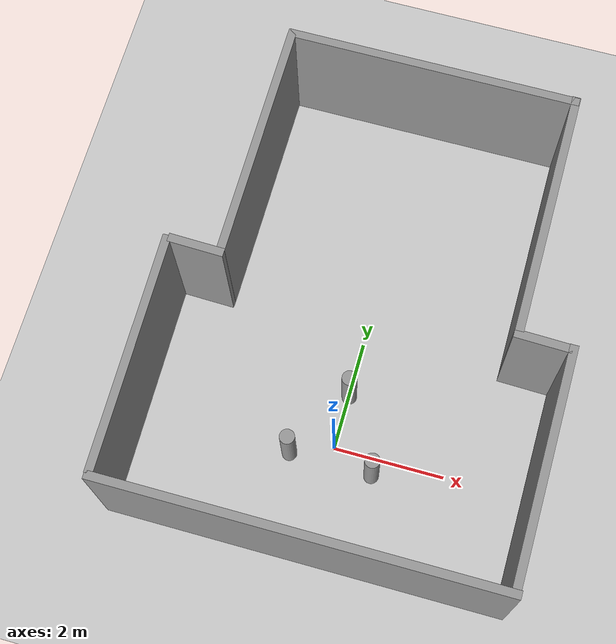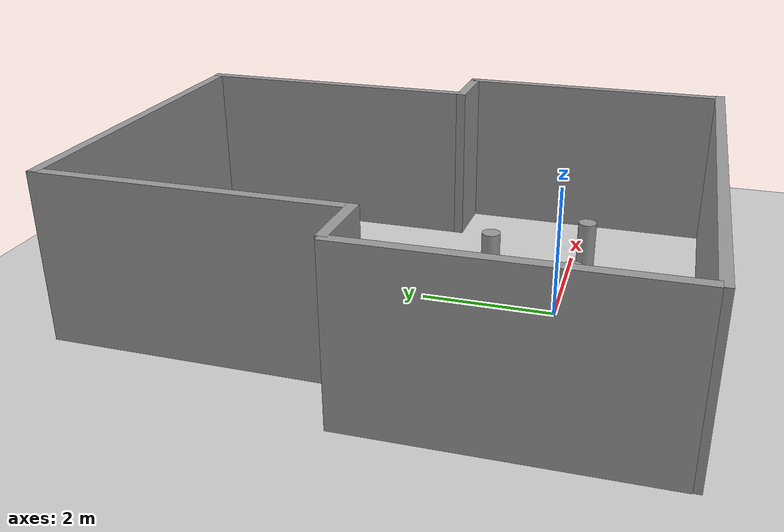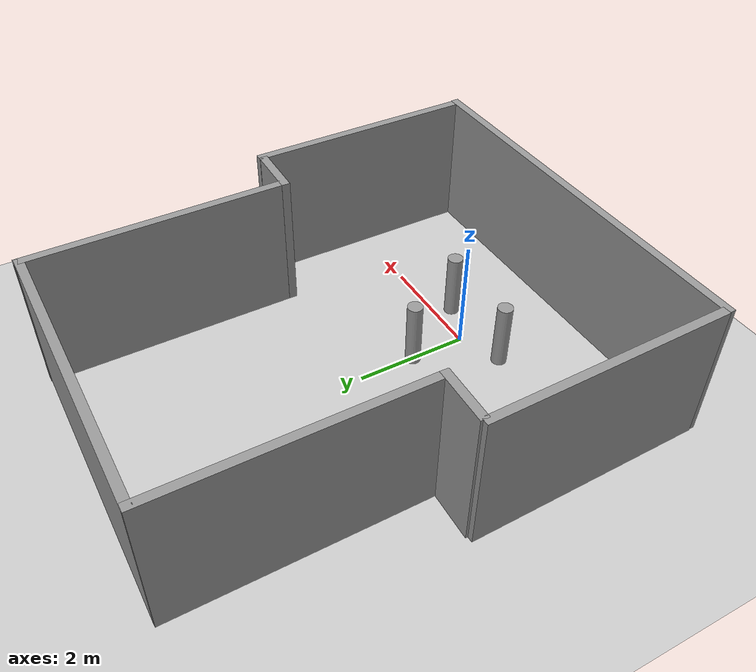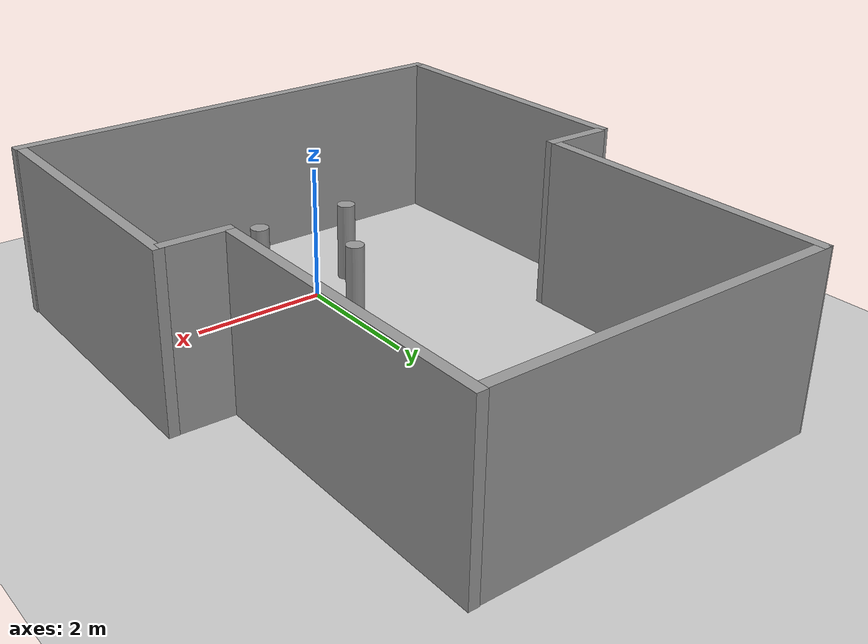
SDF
<sdf version="1.7">
 <world name="default">
  <light name="sun" type="directional">
   <pose>0 0 10 0 -0 0</pose>
   <diffuse>0.8 0.8 0.8 1</diffuse>
   <specular>0.2 0.2 0.2 1</specular>
   <attenuation>
    <range>1000</range>
    <constant>0.9</constant>
    <linear>0.01</linear>
    <quadratic>0.001</quadratic>
   </attenuation>
   <direction>-0.5 0.1 -0.9</direction>
   <spot><inner_angle>0</inner_angle><outer_angle>0</outer_angle><falloff>0</falloff></spot>
  </light>
  <model name="ground_plane">
   <static>1</static>
   <link name="link">
    <collision name="collision">
     <geometry><plane><normal>0 0 1</normal><size>100 100</size></plane></geometry>
     <surface>
      <contact><collide_bitmask>65535</collide_bitmask></contact>
      <friction><ode><mu>100</mu><mu2>50</mu2></ode></friction>
     </surface>
    </collision>
    <visual name="visual">
     <cast_shadows>0</cast_shadows>
     <geometry><plane><normal>0 0 1</normal><size>100 100</size></plane></geometry>
     <material>
      <script><uri>file://media/materials/scripts/gazebo.material</uri><name>Gazebo/Grey</name></script>
     </material>
    </visual>
   </link>
  </model>
  <gravity>0 0 -9.8</gravity>
  <magnetic_field>6e-06 2.3e-05 -4.2e-05</magnetic_field>
  <atmosphere type="adiabatic"/>
  <physics type="ode">
   <max_step_size>0.001</max_step_size>
   <real_time_factor>1</real_time_factor>
   <real_time_update_rate>1000</real_time_update_rate>
  </physics>
  <scene><ambient>0.4 0.4 0.4 1</ambient><background>0.7 0.7 0.7 1</background><shadows>1</shadows></scene>
  <spherical_coordinates>
   <surface_model>EARTH_WGS84</surface_model>
   <latitude_deg>0</latitude_deg>
   <longitude_deg>0</longitude_deg>
   <elevation>0</elevation>
   <heading_deg>0</heading_deg>
  </spherical_coordinates>
  <model name="triangle_lattice">
   <model name="smaller_cylinder">
    <model name="smaller_cylinder_1">
     <link name="link">
      <inertial>
       <mass>0.0872829</mass>
       <inertia>
        <ixx>0.0108064</ixx>
        <ixy>0</ixy>
        <ixz>0</ixz>
        <iyy>0.0108064</iyy>
        <iyz>0</iyz>
        <izz>0.000796093</izz>
       </inertia>
      </inertial>
      <visual name="visual">
       <geometry><cylinder><radius>0.135062</radius><length>1.19624</length></cylinder></geometry>
       <material>
        <script><name>Gazebo/Grey</name><uri>file://media/materials/scripts/gazebo.material</uri></script>
        <shader type="pixel"/>
       </material>
      </visual>
      <collision name="collision">
       <geometry><cylinder><radius>0.135062</radius><length>1.19624</length></cylinder></geometry>
       <surface>
        <friction>
         <ode><mu>1</mu><mu2>1</mu2><fdir1>0 0 0</fdir1><slip1>0</slip1><slip2>0</slip2></ode>
         <torsional>
          <coefficient>1</coefficient>
          <patch_radius>0</patch_radius>
          <surface_radius>0</surface_radius>
          <use_patch_radius>1</use_patch_radius>
          <ode><slip>0</slip></ode>
         </torsional>
        </friction>
        <bounce><restitution_coefficient>0</restitution_coefficient><threshold>1e+06</threshold></bounce>
        <contact>
         <collide_without_contact>0</collide_without_contact>
         <collide_without_contact_bitmask>1</collide_without_contact_bitmask>
         <collide_bitmask>1</collide_bitmask>
         <ode>
          <soft_cfm>0</soft_cfm>
          <soft_erp>0.2</soft_erp>
          <kp>1e+13</kp>
          <kd>1</kd>
          <max_vel>0.01</max_vel>
          <min_depth>0</min_depth>
         </ode>
         <bullet>
          <split_impulse>1</split_impulse>
          <split_impulse_penetration_threshold>-0.01</split_impulse_penetration_threshold>
          <soft_cfm>0</soft_cfm>
          <soft_erp>0.2</soft_erp>
          <kp>1e+13</kp>
          <kd>1</kd>
         </bullet>
        </contact>
       </surface>
      </collision>
     </link>
     <static>0</static>
     <pose>0.044198 -0.101528 0 0 -0 0</pose>
    </model>
    <static>1</static>
    <allow_auto_disable>0</allow_auto_disable>
    <pose>-3.76148 0.681051 0 0 -0 0</pose>
   </model>
   <model name="smaller_cylinder_0">
    <model name="smaller_cylinder_1">
     <link name="link">
      <inertial>
       <mass>0.0872829</mass>
       <inertia>
        <ixx>0.0108064</ixx>
        <ixy>0</ixy>
        <ixz>0</ixz>
        <iyy>0.0108064</iyy>
        <iyz>0</iyz>
        <izz>0.000796093</izz>
       </inertia>
      </inertial>
      <visual name="visual">
       <geometry><cylinder><radius>0.135062</radius><length>1.19624</length></cylinder></geometry>
       <material>
        <script><name>Gazebo/Grey</name><uri>file://media/materials/scripts/gazebo.material</uri></script>
        <shader type="pixel"/>
       </material>
      </visual>
      <collision name="collision">
       <geometry><cylinder><radius>0.135062</radius><length>1.19624</length></cylinder></geometry>
       <surface>
        <friction>
         <ode><mu>1</mu><mu2>1</mu2><fdir1>0 0 0</fdir1><slip1>0</slip1><slip2>0</slip2></ode>
         <torsional>
          <coefficient>1</coefficient>
          <patch_radius>0</patch_radius>
          <surface_radius>0</surface_radius>
          <use_patch_radius>1</use_patch_radius>
          <ode><slip>0</slip></ode>
         </torsional>
        </friction>
        <bounce><restitution_coefficient>0</restitution_coefficient><threshold>1e+06</threshold></bounce>
        <contact>
         <collide_without_contact>0</collide_without_contact>
         <collide_without_contact_bitmask>1</collide_without_contact_bitmask>
         <collide_bitmask>1</collide_bitmask>
         <ode>
          <soft_cfm>0</soft_cfm>
          <soft_erp>0.2</soft_erp>
          <kp>1e+13</kp>
          <kd>1</kd>
          <max_vel>0.01</max_vel>
          <min_depth>0</min_depth>
         </ode>
         <bullet>
          <split_impulse>1</split_impulse>
          <split_impulse_penetration_threshold>-0.01</split_impulse_penetration_threshold>
          <soft_cfm>0</soft_cfm>
          <soft_erp>0.2</soft_erp>
          <kp>1e+13</kp>
          <kd>1</kd>
         </bullet>
        </contact>
       </surface>
      </collision>
     </link>
     <static>0</static>
     <pose>0.044198 -0.101528 0 0 -0 0</pose>
    </model>
    <static>1</static>
    <allow_auto_disable>0</allow_auto_disable>
    <pose>-2.72489 1.77147 0 0 -0 0</pose>
   </model>
   <model name="smaller_cylinder_1">
    <model name="smaller_cylinder_1">
     <link name="link">
      <inertial>
       <mass>0.0872829</mass>
       <inertia>
        <ixx>0.0108064</ixx>
        <ixy>0</ixy>
        <ixz>0</ixz>
        <iyy>0.0108064</iyy>
        <iyz>0</iyz>
        <izz>0.000796093</izz>
       </inertia>
      </inertial>
      <visual name="visual">
       <geometry><cylinder><radius>0.135062</radius><length>1.19624</length></cylinder></geometry>
       <material>
        <script><name>Gazebo/Grey</name><uri>file://media/materials/scripts/gazebo.material</uri></script>
        <shader type="pixel"/>
       </material>
      </visual>
      <collision name="collision">
       <geometry><cylinder><radius>0.135062</radius><length>1.19624</length></cylinder></geometry>
       <surface>
        <friction>
         <ode><mu>1</mu><mu2>1</mu2><fdir1>0 0 0</fdir1><slip1>0</slip1><slip2>0</slip2></ode>
         <torsional>
          <coefficient>1</coefficient>
          <patch_radius>0</patch_radius>
          <surface_radius>0</surface_radius>
          <use_patch_radius>1</use_patch_radius>
          <ode><slip>0</slip></ode>
         </torsional>
        </friction>
        <bounce><restitution_coefficient>0</restitution_coefficient><threshold>1e+06</threshold></bounce>
        <contact>
         <collide_without_contact>0</collide_without_contact>
         <collide_without_contact_bitmask>1</collide_without_contact_bitmask>
         <collide_bitmask>1</collide_bitmask>
         <ode>
          <soft_cfm>0</soft_cfm>
          <soft_erp>0.2</soft_erp>
          <kp>1e+13</kp>
          <kd>1</kd>
          <max_vel>0.01</max_vel>
          <min_depth>0</min_depth>
         </ode>
         <bullet>
          <split_impulse>1</split_impulse>
          <split_impulse_penetration_threshold>-0.01</split_impulse_penetration_threshold>
          <soft_cfm>0</soft_cfm>
          <soft_erp>0.2</soft_erp>
          <kp>1e+13</kp>
          <kd>1</kd>
         </bullet>
        </contact>
       </surface>
      </collision>
     </link>
     <static>0</static>
     <pose>0.044198 -0.101528 0 0 -0 0</pose>
    </model>
    <static>1</static>
    <allow_auto_disable>0</allow_auto_disable>
    <pose>-2.31989 0.319731 0 0 -0 0</pose>
   </model>
   <static>1</static>
   <pose>-1.58827 -2.42592 0.598117 0 0 -1.85283</pose>
  </model>
  <model name="funnel_shaped_room_0">
   <link name="Wall_1">
    <pose>0.091563 -2.92893 0 0 -0 0</pose>
    <inertial>
     <inertia><ixx>0</ixx><ixy>0</ixy><ixz>0</ixz><iyy>0</iyy><iyz>0</iyz><izz>0</izz></inertia>
     <mass>0</mass>
    </inertial>
    <visual name="Wall_1_Visual">
     <pose>0 0 1.25 0 -0 0</pose>
     <geometry><box><size>7.11378 0.15 2.5</size></box></geometry>
     <material>
      <script><uri>file://media/materials/scripts/gazebo.material</uri><name>Gazebo/Grey</name></script>
      <ambient>1 1 1 1</ambient>
      <shader type="pixel"/>
     </material>
     <meta><layer>0</layer></meta>
    </visual>
    <collision name="Wall_1_Collision">
     <pose>0 0 1.25 0 -0 0</pose>
     <geometry><box><size>7.11378 0.15 2.5</size></box></geometry>
     <surface>
      <friction>
       <ode><mu>1</mu><mu2>1</mu2><fdir1>0 0 0</fdir1><slip1>0</slip1><slip2>0</slip2></ode>
       <torsional>
        <coefficient>1</coefficient>
        <patch_radius>0</patch_radius>
        <surface_radius>0</surface_radius>
        <use_patch_radius>1</use_patch_radius>
        <ode><slip>0</slip></ode>
       </torsional>
      </friction>
      <bounce><restitution_coefficient>0</restitution_coefficient><threshold>1e+06</threshold></bounce>
      <contact>
       <collide_without_contact>0</collide_without_contact>
       <collide_without_contact_bitmask>1</collide_without_contact_bitmask>
       <collide_bitmask>1</collide_bitmask>
       <ode>
        <soft_cfm>0</soft_cfm>
        <soft_erp>0.2</soft_erp>
        <kp>1e+13</kp>
        <kd>1</kd>
        <max_vel>0.01</max_vel>
        <min_depth>0</min_depth>
       </ode>
       <bullet>
        <split_impulse>1</split_impulse>
        <split_impulse_penetration_threshold>-0.01</split_impulse_penetration_threshold>
        <soft_cfm>0</soft_cfm>
        <soft_erp>0.2</soft_erp>
        <kp>1e+13</kp>
        <kd>1</kd>
       </bullet>
      </contact>
     </surface>
    </collision>
   </link>
   <link name="Wall_3">
    <pose>2.64577 3.48532 0 0 -0 1.5708</pose>
    <inertial>
     <inertia><ixx>0</ixx><ixy>0</ixy><ixz>0</ixz><iyy>0</iyy><iyz>0</iyz><izz>0</izz></inertia>
     <mass>0</mass>
    </inertial>
    <visual name="Wall_3_Visual">
     <pose>0 0 1.25 0 -0 0</pose>
     <geometry><box><size>4.48059 0.15 2.5</size></box></geometry>
     <material>
      <script><uri>file://media/materials/scripts/gazebo.material</uri><name>Gazebo/Grey</name></script>
      <ambient>1 1 1 1</ambient>
      <shader type="pixel"/>
     </material>
     <meta><layer>0</layer></meta>
    </visual>
    <collision name="Wall_3_Collision">
     <pose>0 0 1.25 0 -0 0</pose>
     <geometry><box><size>4.48059 0.15 2.5</size></box></geometry>
     <surface>
      <friction>
       <ode><mu>1</mu><mu2>1</mu2><fdir1>0 0 0</fdir1><slip1>0</slip1><slip2>0</slip2></ode>
       <torsional>
        <coefficient>1</coefficient>
        <patch_radius>0</patch_radius>
        <surface_radius>0</surface_radius>
        <use_patch_radius>1</use_patch_radius>
        <ode><slip>0</slip></ode>
       </torsional>
      </friction>
      <bounce><restitution_coefficient>0</restitution_coefficient><threshold>1e+06</threshold></bounce>
      <contact>
       <collide_without_contact>0</collide_without_contact>
       <collide_without_contact_bitmask>1</collide_without_contact_bitmask>
       <collide_bitmask>1</collide_bitmask>
       <ode>
        <soft_cfm>0</soft_cfm>
        <soft_erp>0.2</soft_erp>
        <kp>1e+13</kp>
        <kd>1</kd>
        <max_vel>0.01</max_vel>
        <min_depth>0</min_depth>
       </ode>
       <bullet>
        <split_impulse>1</split_impulse>
        <split_impulse_penetration_threshold>-0.01</split_impulse_penetration_threshold>
        <soft_cfm>0</soft_cfm>
        <soft_erp>0.2</soft_erp>
        <kp>1e+13</kp>
        <kd>1</kd>
       </bullet>
      </contact>
     </surface>
    </collision>
   </link>
   <link name="Wall_3_clone">
    <pose>3.56406 -0.806127 0 0 -0 1.56617</pose>
    <inertial>
     <inertia><ixx>0</ixx><ixy>0</ixy><ixz>0</ixz><iyy>0</iyy><iyz>0</iyz><izz>0</izz></inertia>
     <mass>0</mass>
    </inertial>
    <visual name="Wall_3_Visual">
     <pose>0 0 1.25 0 -0 0</pose>
     <geometry><box><size>4.11554 0.15 2.5</size></box></geometry>
     <material>
      <script><uri>file://media/materials/scripts/gazebo.material</uri><name>Gazebo/Grey</name></script>
      <ambient>1 1 1 1</ambient>
      <shader type="pixel"/>
     </material>
     <meta><layer>0</layer></meta>
    </visual>
    <collision name="Wall_3_Collision">
     <pose>0 0 1.25 0 -0 0</pose>
     <geometry><box><size>4.11554 0.15 2.5</size></box></geometry>
     <surface>
      <friction>
       <ode><mu>1</mu><mu2>1</mu2><fdir1>0 0 0</fdir1><slip1>0</slip1><slip2>0</slip2></ode>
       <torsional>
        <coefficient>1</coefficient>
        <patch_radius>0</patch_radius>
        <surface_radius>0</surface_radius>
        <use_patch_radius>1</use_patch_radius>
        <ode><slip>0</slip></ode>
       </torsional>
      </friction>
      <bounce><restitution_coefficient>0</restitution_coefficient><threshold>1e+06</threshold></bounce>
      <contact>
       <collide_without_contact>0</collide_without_contact>
       <collide_without_contact_bitmask>1</collide_without_contact_bitmask>
       <collide_bitmask>1</collide_bitmask>
       <ode>
        <soft_cfm>0</soft_cfm>
        <soft_erp>0.2</soft_erp>
        <kp>1e+13</kp>
        <kd>1</kd>
        <max_vel>0.01</max_vel>
        <min_depth>0</min_depth>
       </ode>
       <bullet>
        <split_impulse>1</split_impulse>
        <split_impulse_penetration_threshold>-0.01</split_impulse_penetration_threshold>
        <soft_cfm>0</soft_cfm>
        <soft_erp>0.2</soft_erp>
        <kp>1e+13</kp>
        <kd>1</kd>
       </bullet>
      </contact>
     </surface>
    </collision>
   </link>
   <link name="Wall_6">
    <pose>-2.51592 3.51045 0 0 -0 1.5708</pose>
    <inertial>
     <inertia><ixx>0</ixx><ixy>0</ixy><ixz>0</ixz><iyy>0</iyy><iyz>0</iyz><izz>0</izz></inertia>
     <mass>0</mass>
    </inertial>
    <visual name="Wall_6_Visual">
     <pose>0 0 1.25 0 -0 0</pose>
     <geometry><box><size>4.40079 0.15 2.5</size></box></geometry>
     <material>
      <script><uri>file://media/materials/scripts/gazebo.material</uri><name>Gazebo/Grey</name></script>
      <ambient>1 1 1 1</ambient>
      <shader type="pixel"/>
     </material>
     <meta><layer>0</layer></meta>
    </visual>
    <collision name="Wall_6_Collision">
     <pose>0 0 1.25 0 -0 0</pose>
     <geometry><box><size>4.40079 0.15 2.5</size></box></geometry>
     <surface>
      <friction>
       <ode><mu>1</mu><mu2>1</mu2><fdir1>0 0 0</fdir1><slip1>0</slip1><slip2>0</slip2></ode>
       <torsional>
        <coefficient>1</coefficient>
        <patch_radius>0</patch_radius>
        <surface_radius>0</surface_radius>
        <use_patch_radius>1</use_patch_radius>
        <ode><slip>0</slip></ode>
       </torsional>
      </friction>
      <bounce><restitution_coefficient>0</restitution_coefficient><threshold>1e+06</threshold></bounce>
      <contact>
       <collide_without_contact>0</collide_without_contact>
       <collide_without_contact_bitmask>1</collide_without_contact_bitmask>
       <collide_bitmask>1</collide_bitmask>
       <ode>
        <soft_cfm>0</soft_cfm>
        <soft_erp>0.2</soft_erp>
        <kp>1e+13</kp>
        <kd>1</kd>
        <max_vel>0.01</max_vel>
        <min_depth>0</min_depth>
       </ode>
       <bullet>
        <split_impulse>1</split_impulse>
        <split_impulse_penetration_threshold>-0.01</split_impulse_penetration_threshold>
        <soft_cfm>0</soft_cfm>
        <soft_erp>0.2</soft_erp>
        <kp>1e+13</kp>
        <kd>1</kd>
       </bullet>
      </contact>
     </surface>
    </collision>
   </link>
   <link name="Wall_6_clone">
    <pose>-3.42841 -0.784437 0 0 -0 1.58334</pose>
    <inertial>
     <inertia><ixx>0</ixx><ixy>0</ixy><ixz>0</ixz><iyy>0</iyy><iyz>0</iyz><izz>0</izz></inertia>
     <mass>0</mass>
    </inertial>
    <visual name="Wall_6_Visual">
     <pose>0 0 1.25 0 -0 0</pose>
     <geometry><box><size>4.23243 0.15 2.5</size></box></geometry>
     <material>
      <script><uri>file://media/materials/scripts/gazebo.material</uri><name>Gazebo/Grey</name></script>
      <ambient>1 1 1 1</ambient>
      <shader type="pixel"/>
     </material>
     <meta><layer>0</layer></meta>
    </visual>
    <collision name="Wall_6_Collision">
     <pose>0 0 1.25 0 -0 0</pose>
     <geometry><box><size>4.23243 0.15 2.5</size></box></geometry>
     <surface>
      <friction>
       <ode><mu>1</mu><mu2>1</mu2><fdir1>0 0 0</fdir1><slip1>0</slip1><slip2>0</slip2></ode>
       <torsional>
        <coefficient>1</coefficient>
        <patch_radius>0</patch_radius>
        <surface_radius>0</surface_radius>
        <use_patch_radius>1</use_patch_radius>
        <ode><slip>0</slip></ode>
       </torsional>
      </friction>
      <bounce><restitution_coefficient>0</restitution_coefficient><threshold>1e+06</threshold></bounce>
      <contact>
       <collide_without_contact>0</collide_without_contact>
       <collide_without_contact_bitmask>1</collide_without_contact_bitmask>
       <collide_bitmask>1</collide_bitmask>
       <ode>
        <soft_cfm>0</soft_cfm>
        <soft_erp>0.2</soft_erp>
        <kp>1e+13</kp>
        <kd>1</kd>
        <max_vel>0.01</max_vel>
        <min_depth>0</min_depth>
       </ode>
       <bullet>
        <split_impulse>1</split_impulse>
        <split_impulse_penetration_threshold>-0.01</split_impulse_penetration_threshold>
        <soft_cfm>0</soft_cfm>
        <soft_erp>0.2</soft_erp>
        <kp>1e+13</kp>
        <kd>1</kd>
       </bullet>
      </contact>
     </surface>
    </collision>
   </link>
   <link name="Wall_6_clone_0">
    <pose>-2.93735 1.28494 0 0 0 -0.025129</pose>
    <inertial>
     <inertia><ixx>0</ixx><ixy>0</ixy><ixz>0</ixz><iyy>0</iyy><iyz>0</iyz><izz>0</izz></inertia>
     <mass>0</mass>
    </inertial>
    <visual name="Wall_6_Visual">
     <pose>0 0 1.25 0 -0 0</pose>
     <geometry><box><size>0.989262 0.15 2.5</size></box></geometry>
     <material>
      <script><uri>file://media/materials/scripts/gazebo.material</uri><name>Gazebo/Grey</name></script>
      <ambient>1 1 1 1</ambient>
      <shader type="pixel"/>
     </material>
     <meta><layer>0</layer></meta>
    </visual>
    <collision name="Wall_6_Collision">
     <pose>0 0 1.25 0 -0 0</pose>
     <geometry><box><size>0.989262 0.15 2.5</size></box></geometry>
     <surface>
      <friction>
       <ode><mu>1</mu><mu2>1</mu2><fdir1>0 0 0</fdir1><slip1>0</slip1><slip2>0</slip2></ode>
       <torsional>
        <coefficient>1</coefficient>
        <patch_radius>0</patch_radius>
        <surface_radius>0</surface_radius>
        <use_patch_radius>1</use_patch_radius>
        <ode><slip>0</slip></ode>
       </torsional>
      </friction>
      <bounce><restitution_coefficient>0</restitution_coefficient><threshold>1e+06</threshold></bounce>
      <contact>
       <collide_without_contact>0</collide_without_contact>
       <collide_without_contact_bitmask>1</collide_without_contact_bitmask>
       <collide_bitmask>1</collide_bitmask>
       <ode>
        <soft_cfm>0</soft_cfm>
        <soft_erp>0.2</soft_erp>
        <kp>1e+13</kp>
        <kd>1</kd>
        <max_vel>0.01</max_vel>
        <min_depth>0</min_depth>
       </ode>
       <bullet>
        <split_impulse>1</split_impulse>
        <split_impulse_penetration_threshold>-0.01</split_impulse_penetration_threshold>
        <soft_cfm>0</soft_cfm>
        <soft_erp>0.2</soft_erp>
        <kp>1e+13</kp>
        <kd>1</kd>
       </bullet>
      </contact>
     </surface>
    </collision>
   </link>
   <link name="Wall_6_clone_0_clone">
    <pose>3.06287 1.18275 0 0 0 -0.025129</pose>
    <inertial>
     <inertia><ixx>0</ixx><ixy>0</ixy><ixz>0</ixz><iyy>0</iyy><iyz>0</iyz><izz>0</izz></inertia>
     <mass>0</mass>
    </inertial>
    <visual name="Wall_6_Visual">
     <pose>0 0 1.25 0 -0 0</pose>
     <geometry><box><size>0.989262 0.15 2.5</size></box></geometry>
     <material>
      <script><uri>file://media/materials/scripts/gazebo.material</uri><name>Gazebo/Grey</name></script>
      <ambient>1 1 1 1</ambient>
      <shader type="pixel"/>
     </material>
     <meta><layer>0</layer></meta>
    </visual>
    <collision name="Wall_6_Collision">
     <pose>0 0 1.25 0 -0 0</pose>
     <geometry><box><size>0.989262 0.15 2.5</size></box></geometry>
     <surface>
      <friction>
       <ode><mu>1</mu><mu2>1</mu2><fdir1>0 0 0</fdir1><slip1>0</slip1><slip2>0</slip2></ode>
       <torsional>
        <coefficient>1</coefficient>
        <patch_radius>0</patch_radius>
        <surface_radius>0</surface_radius>
        <use_patch_radius>1</use_patch_radius>
        <ode><slip>0</slip></ode>
       </torsional>
      </friction>
      <bounce><restitution_coefficient>0</restitution_coefficient><threshold>1e+06</threshold></bounce>
      <contact>
       <collide_without_contact>0</collide_without_contact>
       <collide_without_contact_bitmask>1</collide_without_contact_bitmask>
       <collide_bitmask>1</collide_bitmask>
       <ode>
        <soft_cfm>0</soft_cfm>
        <soft_erp>0.2</soft_erp>
        <kp>1e+13</kp>
        <kd>1</kd>
        <max_vel>0.01</max_vel>
        <min_depth>0</min_depth>
       </ode>
       <bullet>
        <split_impulse>1</split_impulse>
        <split_impulse_penetration_threshold>-0.01</split_impulse_penetration_threshold>
        <soft_cfm>0</soft_cfm>
        <soft_erp>0.2</soft_erp>
        <kp>1e+13</kp>
        <kd>1</kd>
       </bullet>
      </contact>
     </surface>
    </collision>
   </link>
   <link name="Wall_7">
    <pose>0.07384 5.64053 0 0 -0 0</pose>
    <inertial>
     <inertia><ixx>0</ixx><ixy>0</ixy><ixz>0</ixz><iyy>0</iyy><iyz>0</iyz><izz>0</izz></inertia>
     <mass>0</mass>
    </inertial>
    <visual name="Wall_7_Visual">
     <pose>0 0 1.25 0 -0 0</pose>
     <geometry><box><size>5.27102 0.15 2.5</size></box></geometry>
     <material>
      <script><uri>file://media/materials/scripts/gazebo.material</uri><name>Gazebo/Grey</name></script>
      <ambient>1 1 1 1</ambient>
      <shader type="pixel"/>
     </material>
     <meta><layer>0</layer></meta>
    </visual>
    <collision name="Wall_7_Collision">
     <pose>0 0 1.25 0 -0 0</pose>
     <geometry><box><size>5.27102 0.15 2.5</size></box></geometry>
     <surface>
      <friction>
       <ode><mu>1</mu><mu2>1</mu2><fdir1>0 0 0</fdir1><slip1>0</slip1><slip2>0</slip2></ode>
       <torsional>
        <coefficient>1</coefficient>
        <patch_radius>0</patch_radius>
        <surface_radius>0</surface_radius>
        <use_patch_radius>1</use_patch_radius>
        <ode><slip>0</slip></ode>
       </torsional>
      </friction>
      <bounce><restitution_coefficient>0</restitution_coefficient><threshold>1e+06</threshold></bounce>
      <contact>
       <collide_without_contact>0</collide_without_contact>
       <collide_without_contact_bitmask>1</collide_without_contact_bitmask>
       <collide_bitmask>1</collide_bitmask>
       <ode>
        <soft_cfm>0</soft_cfm>
        <soft_erp>0.2</soft_erp>
        <kp>1e+13</kp>
        <kd>1</kd>
        <max_vel>0.01</max_vel>
        <min_depth>0</min_depth>
       </ode>
       <bullet>
        <split_impulse>1</split_impulse>
        <split_impulse_penetration_threshold>-0.01</split_impulse_penetration_threshold>
        <soft_cfm>0</soft_cfm>
        <soft_erp>0.2</soft_erp>
        <kp>1e+13</kp>
        <kd>1</kd>
       </bullet>
      </contact>
     </surface>
    </collision>
   </link>
   <static>1</static>
   <pose>-0.068669 0.876161 0 0 -0 0</pose>
  </model>
 </world>
</sdf>
